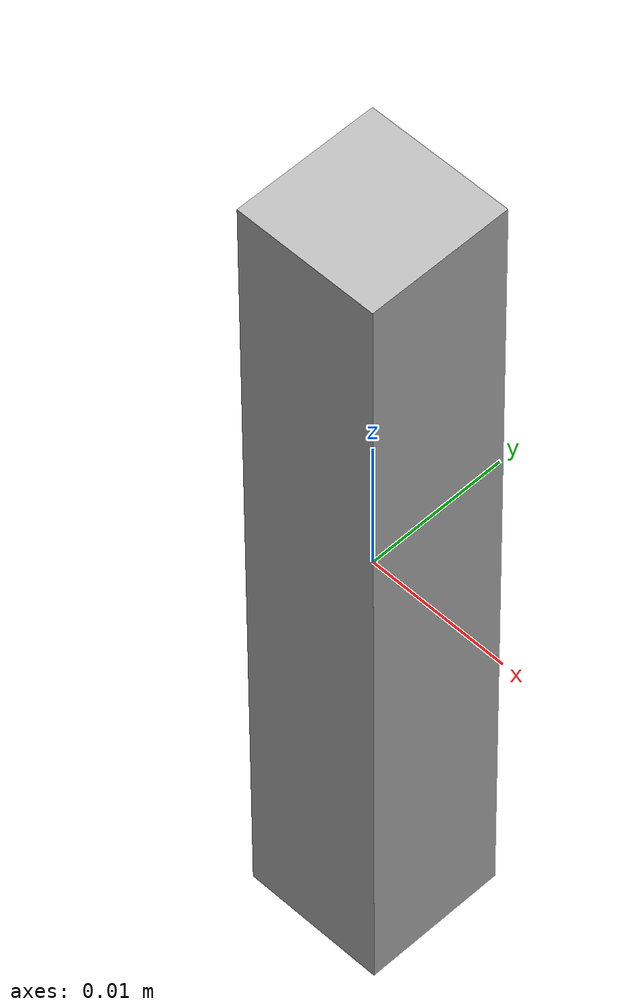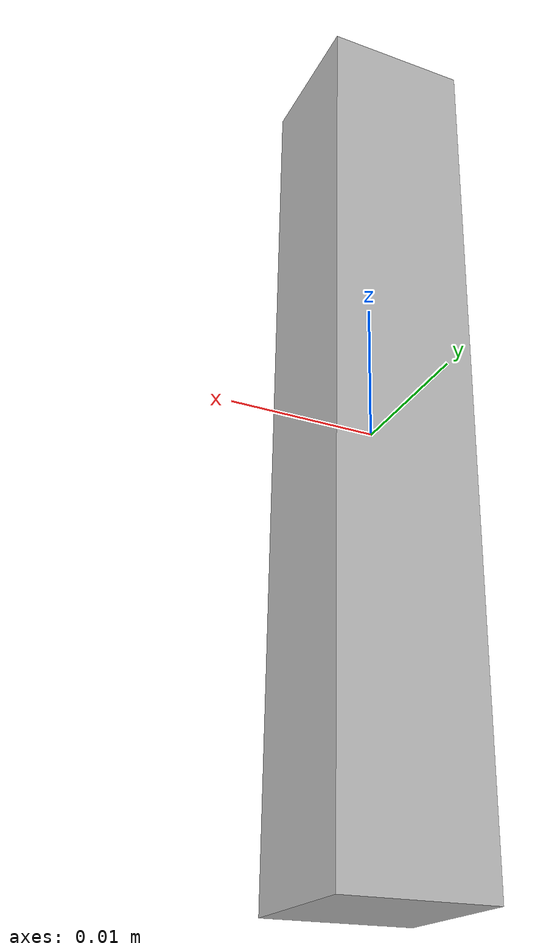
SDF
<?xml version='1.0'?>
<sdf version='1.6'>
    <model name='gripper'>
        <static>false</static>
        <allow_auto_disable>false</allow_auto_disable>

        <pose>0 0 0 0 0 0</pose>

        <link name='link'>
            <pose>0 0 0 0 0 0</pose>

            <gravity>false</gravity>

            <collision name='collision'>
              <geometry>
                <box>
                  <size>0.01 0.01 0.06</size>
                </box>
              </geometry>
              <surface>
                <friction>
                  <ode>
                    <mu>999</mu>
                    <mu2>999</mu2>
                  </ode>
                </friction>
              </surface>
            </collision>

            <visual name='visual'>
                <geometry>
                  <box>
                    <size>0.01 0.01 0.06</size>
                  </box>
                </geometry>
            </visual>

        </link>
    </model>
</sdf>
